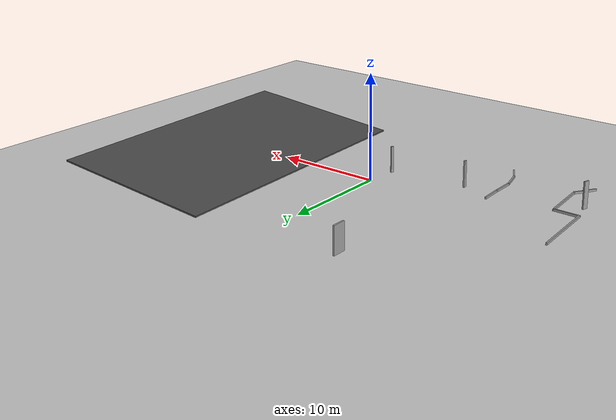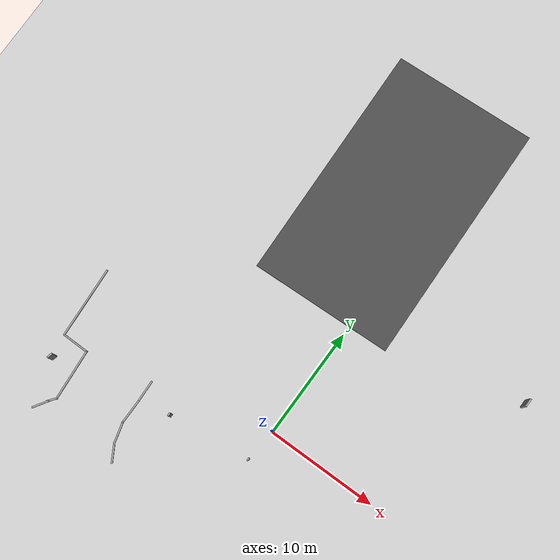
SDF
<sdf version="1.7">
 <world name="default">
  <model name="ground_plane">
   <static>1</static>
   <link name="link">
    <collision name="collision">
     <geometry><plane><normal>0 0 1</normal><size>100 100</size></plane></geometry>
     <surface><friction><ode><mu>100</mu><mu2>50</mu2></ode></friction></surface>
    </collision>
    <visual name="visual">
     <cast_shadows>0</cast_shadows>
     <geometry><plane><normal>0 0 1</normal><size>100 100</size></plane></geometry>
     <material>
      <script><uri>file://media/materials/scripts/gazebo.material</uri><name>Gazebo/Grey</name></script>
     </material>
    </visual>
   </link>
  </model>
  <model name="vehicle_test1">
   <pose>1.6419 -2.1357 0 0 -0 0</pose>
   <link name="Wall_144">
    <collision name="Wall_144_Collision">
     <geometry><box><size>0.5 0.15 2.5</size></box></geometry>
     <pose>0 0 1.25 0 -0 0</pose>
    </collision>
    <visual name="Wall_144_Visual">
     <pose>0 0 1.25 0 -0 0</pose>
     <geometry><box><size>0.5 0.15 2.5</size></box></geometry>
     <material>
      <script><uri>file://media/materials/scripts/gazebo.material</uri><name>Gazebo/Grey</name></script>
      <ambient>1 1 1 1</ambient>
     </material>
     <meta><layer>0</layer></meta>
    </visual>
    <pose>-19.8744 -3.6146 0 0 -0 -1.8326</pose>
   </link>
   <link name="Wall_15">
    <collision name="Wall_15_Collision">
     <geometry><box><size>6.5368 0.15 0.2</size></box></geometry>
     <pose>0 0 0.1 0 -0 0</pose>
    </collision>
    <visual name="Wall_15_Visual">
     <pose>0 0 0.1 0 -0 0</pose>
     <geometry><box><size>6.5368 0.15 0.2</size></box></geometry>
     <material>
      <script><uri>file://media/materials/scripts/gazebo.material</uri><name>Gazebo/Grey</name></script>
      <ambient>1 1 1 1</ambient>
     </material>
     <meta><layer>0</layer></meta>
    </visual>
    <pose>-20.5699 1.58267 0 0 -0 -1.51001</pose>
   </link>
   <link name="Wall_156">
    <collision name="Wall_156_Collision">
     <geometry><box><size>0.3 0.15 2.5</size></box></geometry>
     <pose>0 0 1.25 0 -0 0</pose>
    </collision>
    <visual name="Wall_156_Visual">
     <pose>0 0 1.25 0 -0 0</pose>
     <geometry><box><size>0.3 0.15 2.5</size></box></geometry>
     <material>
      <script><uri>file://media/materials/scripts/gazebo.material</uri><name>Gazebo/Grey</name></script>
      <ambient>1 1 1 1</ambient>
     </material>
     <meta><layer>0</layer></meta>
    </visual>
    <pose>-9.19513 -1.69152 0 0 -0 1.5708</pose>
   </link>
   <link name="Wall_158">
    <collision name="Wall_158_Collision">
     <geometry><box><size>0.25 0.15 2.5</size></box></geometry>
     <pose>0 0 1.25 0 -0 0</pose>
    </collision>
    <visual name="Wall_158_Visual">
     <pose>0 0 1.25 0 -0 0</pose>
     <geometry><box><size>0.25 0.15 2.5</size></box></geometry>
     <material>
      <script><uri>file://media/materials/scripts/gazebo.material</uri><name>Gazebo/Grey</name></script>
      <ambient>1 1 1 1</ambient>
     </material>
     <meta><layer>0</layer></meta>
    </visual>
    <pose>-1.89723 -0.800389 0 0 -0 -1.8326</pose>
   </link>
   <link name="Wall_22">
    <collision name="Wall_22_Collision">
     <geometry><box><size>2.25 0.15 0.2</size></box></geometry>
     <pose>0 0 0.1 0 -0 0</pose>
    </collision>
    <visual name="Wall_22_Visual">
     <pose>0 0 0.1 0 -0 0</pose>
     <geometry><box><size>2.25 0.15 0.2</size></box></geometry>
     <material>
      <script><uri>file://media/materials/scripts/gazebo.material</uri><name>Gazebo/Grey</name></script>
      <ambient>1 1 1 1</ambient>
     </material>
     <meta><layer>0</layer></meta>
    </visual>
    <pose>-12.0779 -3.45883 0 0 -0 -1.5708</pose>
   </link>
   <link name="Wall_23">
    <collision name="Wall_23_Collision">
     <geometry><box><size>1.99998 0.15 0.2</size></box></geometry>
     <pose>0 0 0.1 0 -0 0</pose>
    </collision>
    <visual name="Wall_23_Visual">
     <pose>0 0 0.1 0 -0 0</pose>
     <geometry><box><size>1.99998 0.15 0.2</size></box></geometry>
     <material>
      <script><uri>file://media/materials/scripts/gazebo.material</uri><name>Gazebo/Grey</name></script>
      <ambient>1 1 1 1</ambient>
     </material>
     <meta><layer>0</layer></meta>
    </visual>
    <pose>-11.8384 -5.40233 0 0 -0 -1.30891</pose>
   </link>
   <link name="Wall_24">
    <collision name="Wall_24_Collision">
     <geometry><box><size>1.75031 0.15 0.2</size></box></geometry>
     <pose>0 0 0.1 0 -0 0</pose>
    </collision>
    <visual name="Wall_24_Visual">
     <pose>0 0 0.1 0 -0 0</pose>
     <geometry><box><size>1.75031 0.15 0.2</size></box></geometry>
     <material>
      <script><uri>file://media/materials/scripts/gazebo.material</uri><name>Gazebo/Grey</name></script>
      <ambient>1 1 1 1</ambient>
     </material>
     <meta><layer>0</layer></meta>
    </visual>
    <pose>-11.1989 -6.98883 0 0 -0 -1.04731</pose>
   </link>
   <link name="Wall_32">
    <collision name="Wall_32_Collision">
     <geometry><box><size>2.11464 0.15 0.2</size></box></geometry>
     <pose>0 0 0.1 0 -0 0</pose>
    </collision>
    <visual name="Wall_32_Visual">
     <pose>0 0 0.1 0 -0 0</pose>
     <geometry><box><size>2.11464 0.15 0.2</size></box></geometry>
     <material>
      <script><uri>file://media/materials/scripts/gazebo.material</uri><name>Gazebo/Grey</name></script>
      <ambient>1 1 1 1</ambient>
     </material>
     <meta><layer>0</layer></meta>
    </visual>
    <pose>-12.1199 -1.42741 0 0 -0 1.61361</pose>
   </link>
   <link name="Wall_65">
    <collision name="Wall_65_Collision">
     <geometry><box><size>1.52196 0.15 0.2</size></box></geometry>
     <pose>0 0 0.1 0 -0 0</pose>
    </collision>
    <visual name="Wall_65_Visual">
     <pose>0 0 0.1 0 -0 0</pose>
     <geometry><box><size>1.52196 0.15 0.2</size></box></geometry>
     <material>
      <script><uri>file://media/materials/scripts/gazebo.material</uri><name>Gazebo/Grey</name></script>
      <ambient>1 1 1 1</ambient>
     </material>
     <meta><layer>0</layer></meta>
    </visual>
    <pose>-18.46 -7.33456 0 0 -0 1.00826</pose>
   </link>
   <link name="Wall_66">
    <collision name="Wall_66_Collision">
     <geometry><box><size>0.25 0.15 0.2</size></box></geometry>
     <pose>0 0 0.1 0 -0 0</pose>
    </collision>
    <visual name="Wall_66_Visual">
     <pose>0 0 0.1 0 -0 0</pose>
     <geometry><box><size>0.25 0.15 0.2</size></box></geometry>
     <material>
      <script><uri>file://media/materials/scripts/gazebo.material</uri><name>Gazebo/Grey</name></script>
      <ambient>1 1 1 1</ambient>
     </material>
     <meta><layer>0</layer></meta>
    </visual>
    <pose>-18.1295 -6.78964 0 0 -0 -2.35619</pose>
   </link>
   <link name="Wall_67">
    <collision name="Wall_67_Collision">
     <geometry><box><size>0.986932 0.15 0.2</size></box></geometry>
     <pose>0 0 0.1 0 -0 0</pose>
    </collision>
    <visual name="Wall_67_Visual">
     <pose>0 0 0.1 0 -0 0</pose>
     <geometry><box><size>0.986932 0.15 0.2</size></box></geometry>
     <material>
      <script><uri>file://media/materials/scripts/gazebo.material</uri><name>Gazebo/Grey</name></script>
      <ambient>1 1 1 1</ambient>
     </material>
     <meta><layer>0</layer></meta>
    </visual>
    <pose>-17.9149 -6.48941 0 0 -0 0.930516</pose>
   </link>
   <link name="Wall_73">
    <collision name="Wall_73_Collision">
     <geometry><box><size>4.68738 0.15 0.2</size></box></geometry>
     <pose>0 0 0.1 0 -0 0</pose>
    </collision>
    <visual name="Wall_73_Visual">
     <pose>0 0 0.1 0 -0 0</pose>
     <geometry><box><size>4.68738 0.15 0.2</size></box></geometry>
     <material>
      <script><uri>file://media/materials/scripts/gazebo.material</uri><name>Gazebo/Grey</name></script>
      <ambient>1 1 1 1</ambient>
     </material>
     <meta><layer>0</layer></meta>
    </visual>
    <pose>-17.8454 -3.89233 0 0 -0 1.65044</pose>
   </link>
   <link name="Wall_75">
    <collision name="Wall_75_Collision">
     <geometry><box><size>2.5 0.15 0.2</size></box></geometry>
     <pose>0 0 0.1 0 -0 0</pose>
    </collision>
    <visual name="Wall_75_Visual">
     <pose>0 0 0.1 0 -0 0</pose>
     <geometry><box><size>2.5 0.15 0.2</size></box></geometry>
     <material>
      <script><uri>file://media/materials/scripts/gazebo.material</uri><name>Gazebo/Grey</name></script>
      <ambient>1 1 1 1</ambient>
     </material>
     <meta><layer>0</layer></meta>
    </visual>
    <pose>-19.2009 -1.61783 0 0 -0 -0.011063</pose>
   </link>
   <static>1</static>
  </model>
  <model name="2">
   <pose>4.02665 7.26468 0 0 -0 0</pose>
   <link name="Wall_5">
    <collision name="Wall_5_Collision">
     <geometry><box><size>1.25 0.15 2.5</size></box></geometry>
     <pose>0 0 1.25 0 -0 0</pose>
    </collision>
    <visual name="Wall_5_Visual">
     <pose>0 0 1.25 0 -0 0</pose>
     <geometry><box><size>1.25 0.15 2.5</size></box></geometry>
     <material>
      <script><uri>file://media/materials/scripts/gazebo.material</uri><name>Gazebo/Grey</name></script>
      <ambient>1 1 1 1</ambient>
     </material>
     <meta><layer>0</layer></meta>
    </visual>
    <pose>-11.3119 6.33812 0 0 -0 1.5708</pose>
   </link>
   <link name="Wall_7">
    <collision name="Wall_7_Collision">
     <geometry><box><size>0.75 0.15 2.5</size></box></geometry>
     <pose>0 0 1.25 0 -0 0</pose>
    </collision>
    <visual name="Wall_7_Visual">
     <pose>0 0 1.25 0 -0 0</pose>
     <geometry><box><size>0.75 0.15 2.5</size></box></geometry>
     <material>
      <script><uri>file://media/materials/scripts/gazebo.material</uri><name>Gazebo/Grey</name></script>
      <ambient>1 1 1 1</ambient>
     </material>
     <meta><layer>0</layer></meta>
    </visual>
    <pose>11.3119 6.88963 0 0 -0 1.5708</pose>
   </link>
   <static>1</static>
  </model>
  <model name="asphalt_plane">
   <static>1</static>
   <link name="link">
    <collision name="collision"><geometry><box><size>11.8707 20 0.1</size></box></geometry></collision>
    <visual name="visual">
     <cast_shadows>0</cast_shadows>
     <geometry><box><size>11.8707 20 0.1</size></box></geometry>
     <material>
      <script>
       <uri>model://asphalt_plane/materials/scripts</uri>
       <uri>model://asphalt_plane/materials/textures</uri>
       <name>vrc/asphalt</name>
      </script>
     </material>
    </visual>
   </link>
   <pose>-2.79925 19.6291 9.44458 -0.004475 -0.093342 0.032301</pose>
  </model>
 </world>
</sdf>
